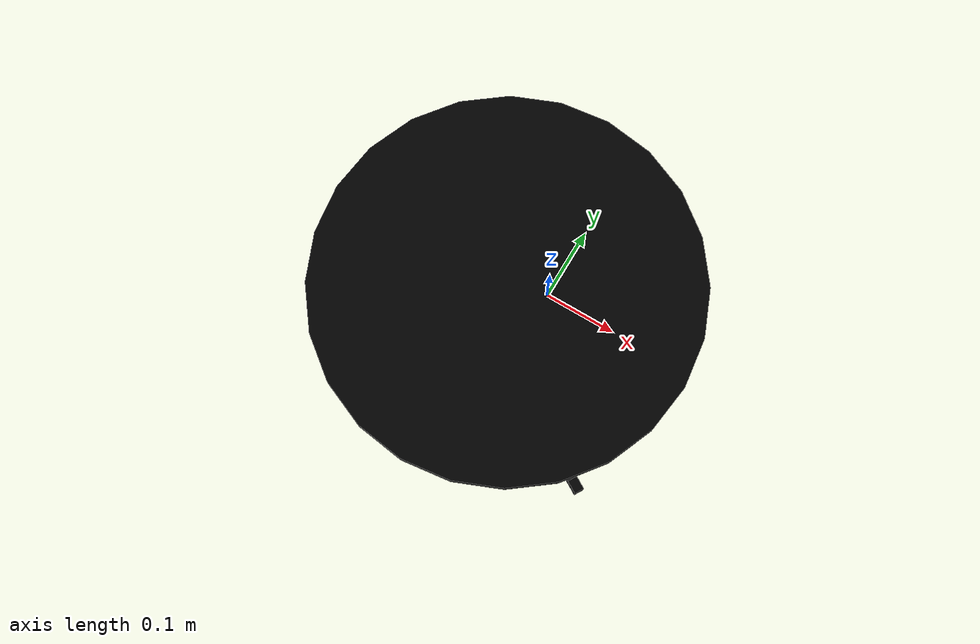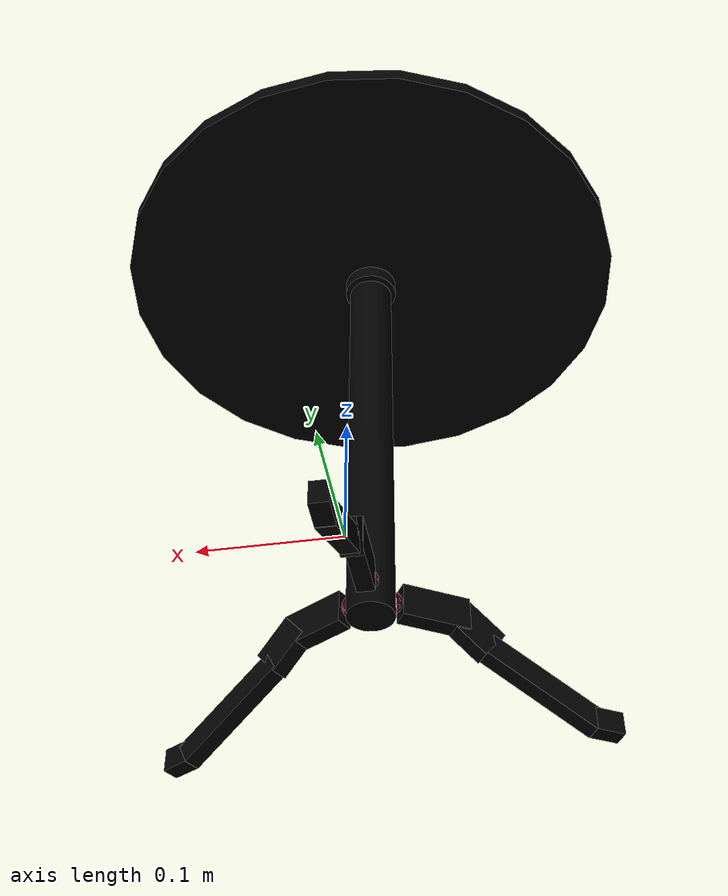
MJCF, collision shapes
<mujoco model="table_dalom_0267">
    <custom>
        <numeric data="0.067685 0.281449 0.015757 0.885371 0.178383 -0.084784 -0.420843" name="0_part0_initpos"/>
        <numeric data="-0.223745 -0.047504 0.012864 -0.0 0.024871 -0.999691 0.0" name="4_part4_initpos"/>
        <numeric data="0.244489 -0.069565 0.018808 0.693328 0.305012 0.637469 0.141058" name="3_part3_initpos"/>
        <numeric data="0.191644 0.098612 0.007244 0.693303 -0.670096 0.222214 0.14465" name="2_part2_initpos"/>
        <numeric data="0.246838 0.250176 0.016717 -0.201074 0.186243 0.060282 -0.959817" name="1_part1_initpos"/>
    </custom>
    <asset>
        <mesh file="table_dalom_0267/0.stl" name="part0" scale="0.00088 0.00088 0.00088"/>
        <mesh file="table_dalom_0267/4.stl" name="part4" scale="0.00088 0.00088 0.00088"/>
        <mesh file="table_dalom_0267/3.stl" name="part3" scale="0.00088 0.00088 0.00088"/>
        <mesh file="table_dalom_0267/2.stl" name="part2" scale="0.00088 0.00088 0.00088"/>
        <mesh file="table_dalom_0267/1.stl" name="part1" scale="0.00088 0.00088 0.00088"/>
    </asset>
    <equality>
        <weld active="false" body1="0_part0" body2="3_part3" solimp="1 1 0.5" solref="0.01 0.3"/>
        <weld active="false" body1="1_part1" body2="3_part3" solimp="1 1 0.5" solref="0.01 0.3"/>
        <weld active="false" body1="2_part2" body2="3_part3" solimp="1 1 0.5" solref="0.01 0.3"/>
        <weld active="false" body1="3_part3" body2="4_part4" solimp="1 1 0.5" solref="0.01 0.3"/>
        <weld active="false" body1="1_part1" body2="3_part3" solimp="1 1 0.5" solref="0.01 0.3"/>
        <weld active="false" body1="2_part2" body2="3_part3" solimp="1 1 0.5" solref="0.01 0.3"/>
        <weld active="false" body1="0_part0" body2="3_part3" solimp="1 1 0.5" solref="0.01 0.3"/>
        <weld active="false" body1="4_part4" body2="3_part3" solimp="1 1 0.5" solref="0.01 0.3"/>
    </equality>
    <worldbody>
        <body name="0_part0" pos="0.0 -1.76e-10 -0.0" quat="1 0 0 0">
            <geom conaffinity="0" contype="0" density="0" mesh="part0" name="0_part0_mesh" pos="0.0 0.0 0.0"
                  rgba="0.82 0.71 0.55 1" type="mesh"/>
            <site name="0_part0_horizontal_radius_site" pos="0.0 -1.76e-10 -0.0" quat="1 0 0 0" rgba="0 0 0 0"
                  size="0.00088"/>
            <site name="0_part0_top_site" pos="0.0 -1.76e-10 0.044704" quat="1 0 0 0" rgba="0 0 0 0" size="0.00088"/>
            <site name="0_part0_bottom_site" pos="0.0 -1.76e-10 -0.044704" quat="1 0 0 0" rgba="0 0 0 0"
                  size="0.00088"/>
            <site name="0_part0_corner_site8" pos="-0.006705600352 0.08944683123200001 0.044704" quat="1 0 0 0"
                  rgba="0 0 0 0" size="0.0088"/>
            <site name="0_part0_corner_site7" pos="0.006705600352 0.08944683123200001 0.044704" quat="1 0 0 0"
                  rgba="0 0 0 0" size="0.0088"/>
            <site name="0_part0_corner_site6" pos="0.006705600352 -0.089446831672 0.044704" quat="1 0 0 0"
                  rgba="0 0 0 0" size="0.0088"/>
            <site name="0_part0_corner_site5" pos="-0.006705600352 -0.089446831672 0.044704" quat="1 0 0 0"
                  rgba="0 0 0 0" size="0.0088"/>
            <site name="0_part0_corner_site4" pos="-0.006705600352 0.08944683123200001 -0.044704" quat="1 0 0 0"
                  rgba="0 0 0 0" size="0.0088"/>
            <site name="0_part0_corner_site3" pos="0.006705600352 0.08944683123200001 -0.044704" quat="1 0 0 0"
                  rgba="0 0 0 0" size="0.0088"/>
            <site name="0_part0_corner_site2" pos="0.006705600352 -0.089446831672 -0.044704" quat="1 0 0 0"
                  rgba="0 0 0 0" size="0.0088"/>
            <site name="0_part0_corner_site1" pos="-0.006705600352 -0.089446831672 -0.044704" quat="1 0 0 0"
                  rgba="0 0 0 0" size="0.0088"/>
            <site name="leg-pole,0,conn_site3" pos="1.4080000000000002e-07 -0.086944 0.03036"
                  quat="0.7071067 0.7071068 0 0" rgba="0.9019 0.0980 0.2941 0.3" size="0.0088"/>
            <geom density="50" name="noviz_collision_0_part0_1" pos="0.0 -0.05632 0.029303999999999997"
                  quat="0.9993908 -0.03489958 0 0" rgba="0 0 0 0" size="0.0067055912 0.0264 0.0132" solref="0.001 1"
                  type="box"/>
            <geom density="50" name="noviz_collision_0_part0_2"
                  pos="8.800000000000001e-05 -0.024551999999999997 0.020416"
                  quat="0.9399356 -0.3413263 -0.002248174 0.003517125" rgba="0 0 0 0" size="0.0067055912 0.0176 0.0132"
                  solref="0.001 1" type="box"/>
            <geom density="50" name="noviz_collision_0_part0_3" pos="-8.800000000000001e-09 0.026136 -0.013376"
                  quat="0.9692429 -0.246106 0 0" rgba="0 0 0 0" size="0.0067055912 0.0484 0.0088" solref="0.001 1"
                  type="box"/>
            <geom density="50" name="noviz_collision_0_part0_4" pos="-8.800000000000001e-09 0.076032 -0.0352"
                  quat="1 0 0 0" rgba="0 0 0 0" size="0.0067055912 0.011000000000000001 0.0088" solref="0.001 1"
                  type="box"/>
        </body>
        <body name="4_part4" pos="0.0 -0.105109051344 0.373948963872" quat="1 0 0 0">
            <geom conaffinity="0" contype="0" density="0" mesh="part4" name="4_part4_mesh" pos="0.0 0.0 0.0"
                  rgba="0.82 0.71 0.55 1" type="mesh"/>
            <site name="4_part4_horizontal_radius_site" pos="0.0 0.0 0.0" quat="1 0 0 0" rgba="0 0 0 0" size="0.00088"/>
            <site name="4_part4_top_site" pos="0.0 0.0 0.012740637184" quat="1 0 0 0" rgba="0 0 0 0" size="0.00088"/>
            <site name="4_part4_bottom_site" pos="0.0 0.0 -0.012740637184" quat="1 0 0 0" rgba="0 0 0 0"
                  size="0.00088"/>
            <site name="4_part4_corner_site8" pos="-0.215138005368 0.215138005368 0.012740637184" quat="1 0 0 0"
                  rgba="0 0 0 0" size="0.0088"/>
            <site name="4_part4_corner_site7" pos="0.215138005368 0.215138005368 0.012740637184" quat="1 0 0 0"
                  rgba="0 0 0 0" size="0.0088"/>
            <site name="4_part4_corner_site6" pos="0.215138005368 -0.215138005368 0.012740637184" quat="1 0 0 0"
                  rgba="0 0 0 0" size="0.0088"/>
            <site name="4_part4_corner_site5" pos="-0.215138005368 -0.215138005368 0.012740637184" quat="1 0 0 0"
                  rgba="0 0 0 0" size="0.0088"/>
            <site name="4_part4_corner_site4" pos="-0.215138005368 0.215138005368 -0.012740637184" quat="1 0 0 0"
                  rgba="0 0 0 0" size="0.0088"/>
            <site name="4_part4_corner_site3" pos="0.215138005368 0.215138005368 -0.012740637184" quat="1 0 0 0"
                  rgba="0 0 0 0" size="0.0088"/>
            <site name="4_part4_corner_site2" pos="0.215138005368 -0.215138005368 -0.012740637184" quat="1 0 0 0"
                  rgba="0 0 0 0" size="0.0088"/>
            <site name="4_part4_corner_site1" pos="-0.215138005368 -0.215138005368 -0.012740637184" quat="1 0 0 0"
                  rgba="0 0 0 0" size="0.0088"/>
            <site name="top-pole,conn_site1" pos="1.4080000000000002e-07 -2.0328e-06 -0.01274064" quat="1 0 0 0"
                  rgba="0.2352 0.7058 0.2941 0.3" size="0.0088"/>
            <geom density="50" name="noviz_collision_4_part4_0" pos="-6.864e-07 -6.16e-08 0.0067436512" quat="1 0 0 0"
                  rgba="0 0 0 0" size="0.215137296 0.0061600000000000005" solref="0.001 1" type="cylinder"/>
            <geom density="50" name="noviz_collision_4_part4_1" pos="-6.864e-07 -6.16e-08 -0.005404986400000001"
                  quat="1 0 0 0" rgba="0 0 0 0" size="0.022000000000000002 0.0061600000000000005" solref="0.001 1"
                  type="cylinder"/>
        </body>
        <body name="3_part3" pos="2.87144e-07 -0.10511312556800001 0.186192163344" quat="1 0 0 0">
            <geom conaffinity="0" contype="0" density="0" mesh="part3" name="3_part3_mesh" pos="0.0 0.0 0.0"
                  rgba="0.82 0.71 0.55 1" type="mesh"/>
            <site name="3_part3_horizontal_radius_site" pos="0.0 0.0 -0.0" quat="1 0 0 0" rgba="0 0 0 0"
                  size="0.00088"/>
            <site name="3_part3_top_site" pos="0.0 0.0 0.17501616334400003" quat="1 0 0 0" rgba="0 0 0 0"
                  size="0.00088"/>
            <site name="3_part3_bottom_site" pos="0.0 0.0 -0.17501616334400003" quat="1 0 0 0" rgba="0 0 0 0"
                  size="0.00088"/>
            <site name="3_part3_corner_site8" pos="-0.032874587592 0.032833068576000005 0.17501616334400003"
                  quat="1 0 0 0" rgba="0 0 0 0" size="0.0088"/>
            <site name="3_part3_corner_site7" pos="0.032874587592 0.032833068576000005 0.17501616334400003"
                  quat="1 0 0 0" rgba="0 0 0 0" size="0.0088"/>
            <site name="3_part3_corner_site6" pos="0.032874587592 -0.032833068576000005 0.17501616334400003"
                  quat="1 0 0 0" rgba="0 0 0 0" size="0.0088"/>
            <site name="3_part3_corner_site5" pos="-0.032874587592 -0.032833068576000005 0.17501616334400003"
                  quat="1 0 0 0" rgba="0 0 0 0" size="0.0088"/>
            <site name="3_part3_corner_site4" pos="-0.032874587592 0.032833068576000005 -0.17501616334400003"
                  quat="1 0 0 0" rgba="0 0 0 0" size="0.0088"/>
            <site name="3_part3_corner_site3" pos="0.032874587592 0.032833068576000005 -0.17501616334400003"
                  quat="1 0 0 0" rgba="0 0 0 0" size="0.0088"/>
            <site name="3_part3_corner_site2" pos="0.032874587592 -0.032833068576000005 -0.17501616334400003"
                  quat="1 0 0 0" rgba="0 0 0 0" size="0.0088"/>
            <site name="3_part3_corner_site1" pos="-0.032874587592 -0.032833068576000005 -0.17501616334400003"
                  quat="1 0 0 0" rgba="0 0 0 0" size="0.0088"/>
            <site name="pole-top,conn_site1" pos="-1.4080000000000002e-07 2.0416e-06 0.17501616" quat="1 0 0 0"
                  rgba="0.2352 0.7058 0.2941 0.3" size="0.0088"/>
            <site name="pole-leg,0,conn_site3" pos="-1.4080000000000002e-07 0.0181691224 -0.15583216"
                  quat="0.7071067 0.7071068 0 0" rgba="0.9019 0.0980 0.2941 0.3" size="0.0088"/>
            <site name="pole-leg,0,conn_site2" pos="-0.013728290399999999 -0.0079668776 -0.15825216"
                  quat="0.3535534 0.3535534 0.6123725 0.6123725" rgba="0.9019 0.0980 0.2941 0.3" size="0.0088"/>
            <site name="pole-leg,0,conn_site1" pos="0.0141677096 -0.0081428776 -0.15825216"
                  quat="-0.3535534 -0.3535534 0.6123725 0.6123725" rgba="0.9019 0.0980 0.2941 0.3" size="0.0088"/>
            <geom density="50" name="noviz_collision_3_part3_0" pos="-1.6896000000000003e-06 -3.2208e-06 -0.0001601688"
                  quat="1 0 0 0" rgba="0 0 0 0" size="0.01804 0.17424" solref="0.001 1" type="cylinder"/>
        </body>
        <body name="2_part2" pos="0.091027108744 -0.157663577016 -0.0" quat="1 0 0 0">
            <geom conaffinity="0" contype="0" density="0" mesh="part2" name="2_part2_mesh" pos="0.0 0.0 0.0"
                  rgba="0.82 0.71 0.55 1" type="mesh"/>
            <site name="2_part2_horizontal_radius_site" pos="1.76e-10 8.8e-11 -0.0" quat="1 0 0 0" rgba="0 0 0 0"
                  size="0.00088"/>
            <site name="2_part2_top_site" pos="1.76e-10 8.8e-11 0.044704" quat="1 0 0 0" rgba="0 0 0 0" size="0.00088"/>
            <site name="2_part2_bottom_site" pos="1.76e-10 8.8e-11 -0.044704" quat="1 0 0 0" rgba="0 0 0 0"
                  size="0.00088"/>
            <site name="2_part2_corner_site8" pos="-0.08081602786400001 0.050530635672 0.044704" quat="1 0 0 0"
                  rgba="0 0 0 0" size="0.0088"/>
            <site name="2_part2_corner_site7" pos="0.08081602821600001 0.050530635672 0.044704" quat="1 0 0 0"
                  rgba="0 0 0 0" size="0.0088"/>
            <site name="2_part2_corner_site6" pos="0.08081602821600001 -0.050530635496 0.044704" quat="1 0 0 0"
                  rgba="0 0 0 0" size="0.0088"/>
            <site name="2_part2_corner_site5" pos="-0.08081602786400001 -0.050530635496 0.044704" quat="1 0 0 0"
                  rgba="0 0 0 0" size="0.0088"/>
            <site name="2_part2_corner_site4" pos="-0.08081602786400001 0.050530635672 -0.044704" quat="1 0 0 0"
                  rgba="0 0 0 0" size="0.0088"/>
            <site name="2_part2_corner_site3" pos="0.08081602821600001 0.050530635672 -0.044704" quat="1 0 0 0"
                  rgba="0 0 0 0" size="0.0088"/>
            <site name="2_part2_corner_site2" pos="0.08081602821600001 -0.050530635496 -0.044704" quat="1 0 0 0"
                  rgba="0 0 0 0" size="0.0088"/>
            <site name="2_part2_corner_site1" pos="-0.08081602786400001 -0.050530635496 -0.044704" quat="1 0 0 0"
                  rgba="0 0 0 0" size="0.0088"/>
            <site name="leg-pole,0,conn_site1" pos="-0.076859112 0.0444075896 0.02794"
                  quat="-0.3535534 -0.3535534 0.6123725 0.6123725" rgba="0.9019 0.0980 0.2941 0.3" size="0.0088"/>
            <geom density="50" name="noviz_collision_2_part2_1"
                  pos="-0.046763111999999996 0.0268955808 0.029303999999999997" quat="-0.4999999 0 0 0.8660254"
                  rgba="0 0 0 0" size="0.0067055912 0.0264 0.0132" solref="0.001 1" type="box"/>
            <geom density="50" name="noviz_collision_2_part2_2" pos="-0.020275103200000002 0.0123755808 0.020416"
                  quat="-0.4711259 0.1719258 -0.2948733 0.813346" rgba="0 0 0 0" size="0.0067055912 0.0176 0.0132"
                  solref="0.001 1" type="box"/>
            <geom density="50" name="noviz_collision_2_part2_3" pos="0.0235481752 -0.0130959752 -0.013376"
                  quat="-0.4826705 0.1225576 -0.2134194 0.8405123" rgba="0 0 0 0" size="0.0067055912 0.0484 0.0088"
                  solref="0.001 1" type="box"/>
            <geom density="50" name="noviz_collision_2_part2_4" pos="0.06664306880000001 -0.0382444568 -0.0352"
                  quat="-0.4979872 0 0 0.8671844" rgba="0 0 0 0" size="0.0067055912 0.011000000000000001 0.0088"
                  solref="0.001 1" type="box"/>
        </body>
        <body name="1_part1" pos="-0.091027108744 -0.157663577016 -0.0" quat="1 0 0 0">
            <geom conaffinity="0" contype="0" density="0" mesh="part1" name="1_part1_mesh" pos="0.0 0.0 0.0"
                  rgba="0.82 0.71 0.55 1" type="mesh"/>
            <site name="1_part1_horizontal_radius_site" pos="-1.76e-10 8.8e-11 -0.0" quat="1 0 0 0" rgba="0 0 0 0"
                  size="0.00088"/>
            <site name="1_part1_top_site" pos="-1.76e-10 8.8e-11 0.044704" quat="1 0 0 0" rgba="0 0 0 0"
                  size="0.00088"/>
            <site name="1_part1_bottom_site" pos="-1.76e-10 8.8e-11 -0.044704" quat="1 0 0 0" rgba="0 0 0 0"
                  size="0.00088"/>
            <site name="1_part1_corner_site8" pos="-0.08081602821600001 0.050530635672 0.044704" quat="1 0 0 0"
                  rgba="0 0 0 0" size="0.0088"/>
            <site name="1_part1_corner_site7" pos="0.08081602786400001 0.050530635672 0.044704" quat="1 0 0 0"
                  rgba="0 0 0 0" size="0.0088"/>
            <site name="1_part1_corner_site6" pos="0.08081602786400001 -0.050530635496 0.044704" quat="1 0 0 0"
                  rgba="0 0 0 0" size="0.0088"/>
            <site name="1_part1_corner_site5" pos="-0.08081602821600001 -0.050530635496 0.044704" quat="1 0 0 0"
                  rgba="0 0 0 0" size="0.0088"/>
            <site name="1_part1_corner_site4" pos="-0.08081602821600001 0.050530635672 -0.044704" quat="1 0 0 0"
                  rgba="0 0 0 0" size="0.0088"/>
            <site name="1_part1_corner_site3" pos="0.08081602786400001 0.050530635672 -0.044704" quat="1 0 0 0"
                  rgba="0 0 0 0" size="0.0088"/>
            <site name="1_part1_corner_site2" pos="0.08081602786400001 -0.050530635496 -0.044704" quat="1 0 0 0"
                  rgba="0 0 0 0" size="0.0088"/>
            <site name="1_part1_corner_site1" pos="-0.08081602821600001 -0.050530635496 -0.044704" quat="1 0 0 0"
                  rgba="0 0 0 0" size="0.0088"/>
            <site name="leg-pole,0,conn_site2" pos="0.077299112 0.0445835808 0.02794"
                  quat="0.3535534 0.3535534 0.6123725 0.6123725" rgba="0.9019 0.0980 0.2941 0.3" size="0.0088"/>
            <geom density="50" name="noviz_collision_1_part1_1"
                  pos="0.048523112 0.027863580800000003 0.029303999999999997" quat="0.4999999 0 0 0.8660254"
                  rgba="0 0 0 0" size="0.0067055912 0.0264 0.0132" solref="0.001 1" type="box"/>
            <geom density="50" name="noviz_collision_1_part1_2" pos="0.0211551032 0.0105275896 0.019272"
                  quat="0.4696601 -0.1697121 -0.2961531 0.8141932" rgba="0 0 0 0" size="0.0067055912 0.0176 0.0132"
                  solref="0.001 1" type="box"/>
            <geom density="50" name="noviz_collision_1_part1_3" pos="-0.0228677944 -0.014597422400000002 -0.01452"
                  quat="0.4874388 -0.1237684 -0.2127194 0.8377561" rgba="0 0 0 0" size="0.0067055912 0.0484 0.0088"
                  solref="0.001 1" type="box"/>
            <geom density="50" name="noviz_collision_1_part1_4" pos="-0.0662456872 -0.0392544416 -0.036343999999999994"
                  quat="0.502907 0 0 0.8643405" rgba="0 0 0 0" size="0.0067055912 0.011000000000000001 0.0088"
                  solref="0.001 1" type="box"/>
        </body>
    </worldbody>
    <actuator/>
    <sensor/>
    <contact/>
    <default/>
</mujoco>
